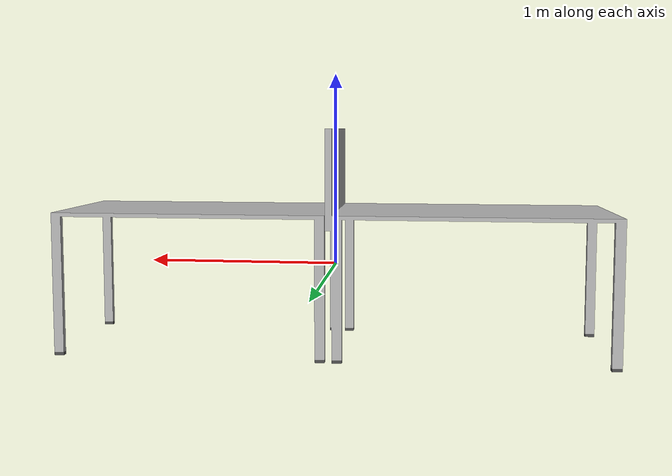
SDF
<?xml version='1.0'?>
<sdf version='1.5'>
    <model name="402_table">
        <pose>0 0 0 0 0 0</pose>
        <static>false</static>
        <link name='model_body'>
            <visual name="visual">
                <geometry>
                    <mesh>
                        <uri>model://rs_gazebo/meshes/ss_hq4/402_table/402_table_visual.dae</uri>
                        <scale>1 1 1</scale>
                    </mesh>
                </geometry>
            </visual>

            <collision name="collision">
                <geometry>
                    <mesh>
                        <uri>model://rs_gazebo/meshes/ss_hq4/402_table/402_table_collision.stl</uri>
                        <scale>1 1 1</scale>
                    </mesh>
                </geometry>
            </collision>

            <inertial>
                <pose> 0 0 0 0 0 0</pose>
                <inertia>
                    <ixx>0.833</ixx>
                    <ixy>0</ixy>
                    <ixz>0</ixz>
                    <iyy>10.0205</iyy>
                    <iyz>0</iyz>
                    <izz>10.4125</izz>
                </inertia>
                <mass>15.0</mass>
            </inertial>
        </link>
    </model>
</sdf>
